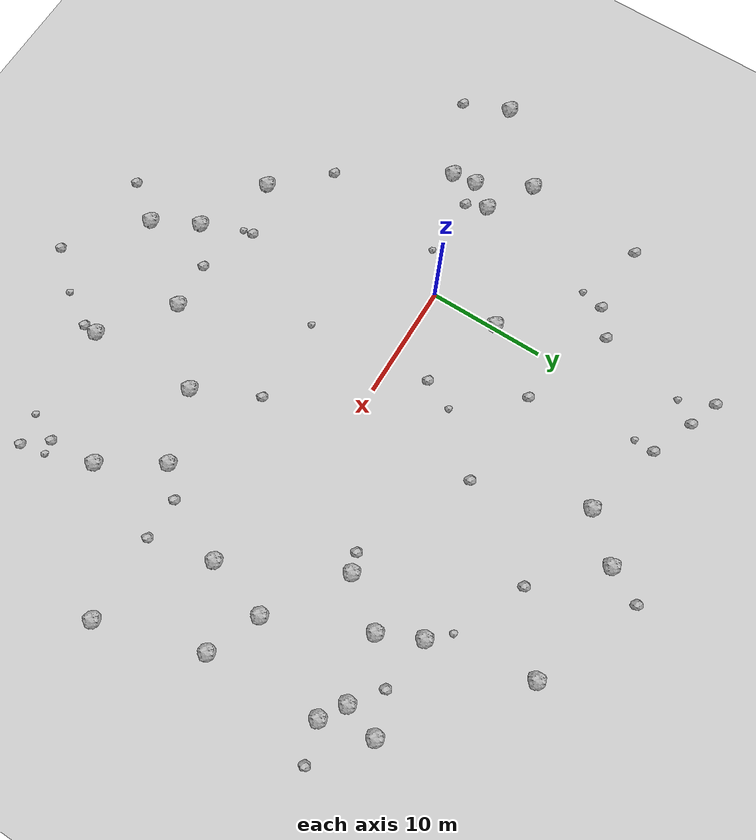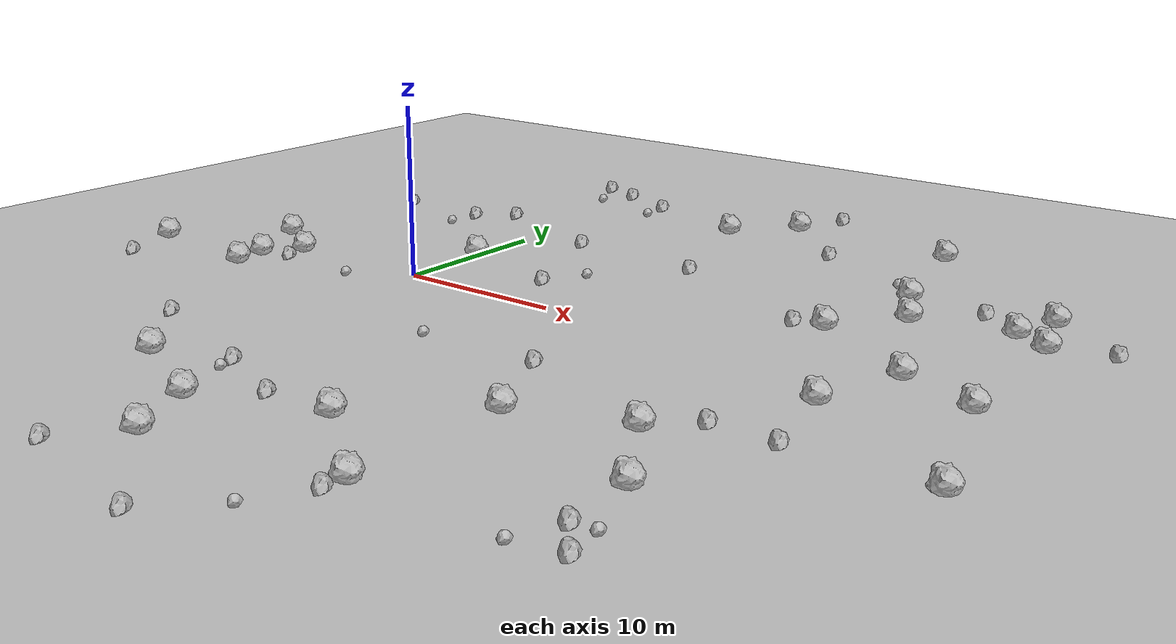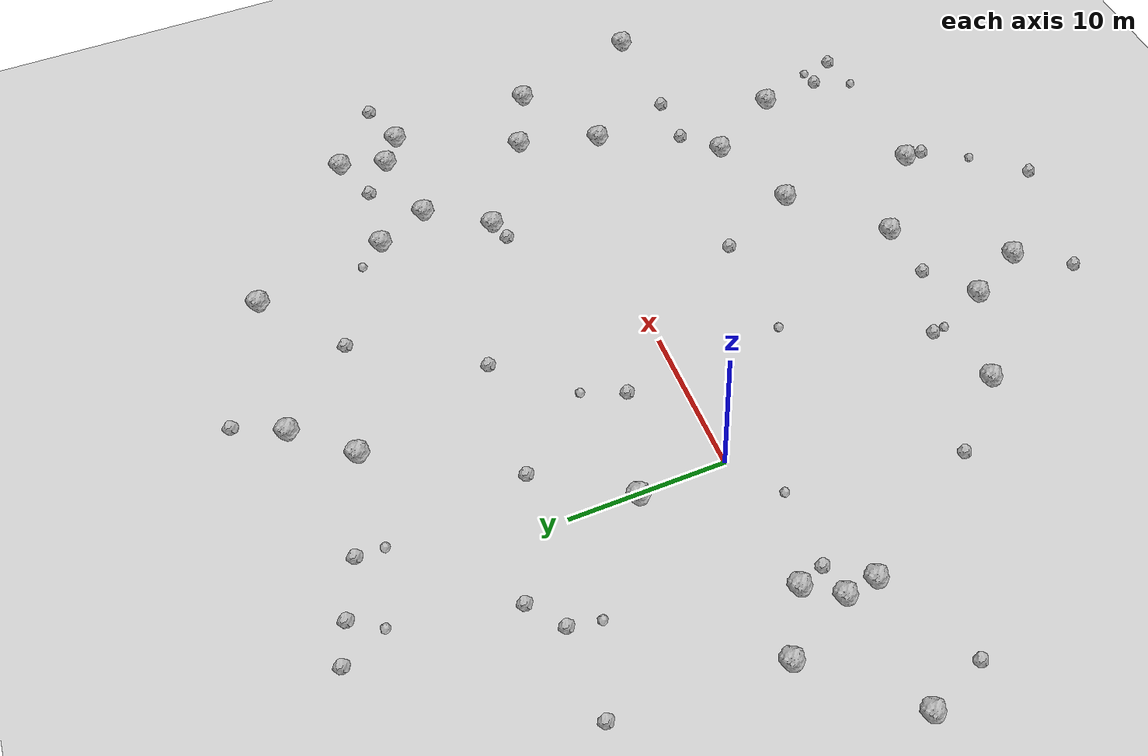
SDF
<sdf version="1.6">
 <world name="default">
  <include><uri>model://custom_ground</uri></include>
  <include><uri>model://sun</uri></include>
  <model name="rock1_0_0">
   <include><uri>model://rock1</uri><pose>23.96256814576043 -10.586147073642778 0.5 0 0 0</pose></include>
  </model>
  <model name="rock1_0_1">
   <include><uri>model://rock1</uri><pose>-0.1580409418926365 5.679114083501233 0.5 0 0 0</pose></include>
  </model>
  <model name="rock1_0_2">
   <include><uri>model://rock1</uri><pose>28.41739158182829 -3.074814084284803 0.5 0 0 0</pose></include>
  </model>
  <model name="rock1_0_3">
   <include><uri>model://rock1</uri><pose>17.941708850916385 -12.741150874366923 0.5 0 0 0</pose></include>
  </model>
  <model name="rock1_0_4">
   <include><uri>model://rock1</uri><pose>32.87942995188476 14.484928127473097 0.5 0 0 0</pose></include>
  </model>
  <model name="rock1_0_5">
   <include><uri>model://rock1</uri><pose>5.297471644125228 -20.443782554394325 0.5 0 0 0</pose></include>
  </model>
  <model name="rock1_0_6">
   <include><uri>model://rock1</uri><pose>33.98502137144183 10.156894638287625 0.5 0 0 0</pose></include>
  </model>
  <model name="rock1_0_7">
   <include><uri>model://rock1</uri><pose>-18.61232958123685 -3.422036454938084 0.5 0 0 0</pose></include>
  </model>
  <model name="rock1_0_8">
   <include><uri>model://rock1</uri><pose>-10.424005905759916 -4.464434464372967 0.5 0 0 0</pose></include>
  </model>
  <model name="rock1_0_9">
   <include><uri>model://rock1</uri><pose>18.0621693828733 -22.166217941436116 0.5 0 0 0</pose></include>
  </model>
  <model name="rock1_0_10">
   <include><uri>model://rock1</uri><pose>34.43435731147181 0.40605139688128133 0.5 0 0 0</pose></include>
  </model>
  <model name="rock1_0_11">
   <include><uri>model://rock1</uri><pose>-10.698162312541825 -2.3847659155270655 0.5 0 0 0</pose></include>
  </model>
  <model name="rock1_0_12">
   <include><uri>model://rock1</uri><pose>12.40423361291868 23.394985836606764 0.5 0 0 0</pose></include>
  </model>
  <model name="rock1_0_13">
   <include><uri>model://rock1</uri><pose>-13.059409607692023 2.1029047907385916 0.5 0 0 0</pose></include>
  </model>
  <model name="rock1_0_14">
   <include><uri>model://rock1</uri><pose>9.178014654658845 19.939708198522908 0.5 0 0 0</pose></include>
  </model>
  <model name="rock1_0_15">
   <include><uri>model://rock1</uri><pose>26.415786492979663 10.464565087323173 0.5 0 0 0</pose></include>
  </model>
  <model name="rock1_0_16">
   <include><uri>model://rock1</uri><pose>30.02413011107513 2.2766012231866384 0.5 0 0 0</pose></include>
  </model>
  <model name="rock1_0_17">
   <include><uri>model://rock1</uri><pose>37.08525120557077 -8.429192265944383 0.5 0 0 0</pose></include>
  </model>
  <model name="rock1_0_18">
   <include><uri>model://rock1</uri><pose>27.09199994535812 -15.657473308679657 0.5 0 0 0</pose></include>
  </model>
  <model name="rock1_0_19">
   <include><uri>model://rock1</uri><pose>-0.8922242826436957 -17.66719383208281 0.5 0 0 0</pose></include>
  </model>
  <model name="rock1_0_20">
   <include><uri>model://rock1</uri><pose>7.299470260438689 -24.273388104321164 0.5 0 0 0</pose></include>
  </model>
  <model name="rock1_0_21">
   <include><uri>model://rock1</uri><pose>22.945594447407736 22.639345842651814 0.5 0 0 0</pose></include>
  </model>
  <model name="rock1_0_22">
   <include><uri>model://rock1</uri><pose>31.944654300674436 11.467203417531962 0.5 0 0 0</pose></include>
  </model>
  <model name="rock1_0_23">
   <include><uri>model://rock1</uri><pose>12.36814415746121 -17.806907995512976 0.5 0 0 0</pose></include>
  </model>
  <model name="rock1_0_24">
   <include><uri>model://rock1</uri><pose>-9.18715183311863 -0.29991783965035523 0.5 0 0 0</pose></include>
  </model>
  <model name="rock1_0_25">
   <include><uri>model://rock1</uri><pose>23.529986395838343 6.515106325926851 0.5 0 0 0</pose></include>
  </model>
  <model name="rock1_0_26">
   <include><uri>model://rock1</uri><pose>24.815076601063687 13.910479630349023 0.5 0 0 0</pose></include>
  </model>
  <model name="rock2_0_0">
   <include><uri>model://rock2</uri><pose>3.578129130869094 -16.16692837668848 0.3 0 0 0</pose></include>
  </model>
  <model name="rock2_0_1">
   <include><uri>model://rock2</uri><pose>27.428267597585908 -19.759513121159923 0.3 0 0 0</pose></include>
  </model>
  <model name="rock2_0_2">
   <include><uri>model://rock2</uri><pose>29.48508474239822 13.352315158277285 0.3 0 0 0</pose></include>
  </model>
  <model name="rock2_0_3">
   <include><uri>model://rock2</uri><pose>-4.1746304810611505 14.165744127129244 0.3 0 0 0</pose></include>
  </model>
  <model name="rock2_0_4">
   <include><uri>model://rock2</uri><pose>17.295356006212558 18.435426283717 0.3 0 0 0</pose></include>
  </model>
  <model name="rock2_0_5">
   <include><uri>model://rock2</uri><pose>12.289626321882182 10.640985729403674 0.3 0 0 0</pose></include>
  </model>
  <model name="rock2_0_6">
   <include><uri>model://rock2</uri><pose>-1.2643293683313814 23.536320333111753 0.3 0 0 0</pose></include>
  </model>
  <model name="rock2_0_7">
   <include><uri>model://rock2</uri><pose>-5.078221449205184 -13.347228170310135 0.3 0 0 0</pose></include>
  </model>
  <model name="rock2_0_8">
   <include><uri>model://rock2</uri><pose>3.763340004281538 11.200142381877818 0.3 0 0 0</pose></include>
  </model>
  <model name="rock2_0_9">
   <include><uri>model://rock2</uri><pose>-8.593817911637815 -2.05421884149213 0.3 0 0 0</pose></include>
  </model>
  <model name="rock2_0_10">
   <include><uri>model://rock2</uri><pose>13.921627170675514 26.487560802090762 0.3 0 0 0</pose></include>
  </model>
  <model name="rock2_0_11">
   <include><uri>model://rock2</uri><pose>4.910181380320477 -27.513099349576567 0.3 0 0 0</pose></include>
  </model>
  <model name="rock2_0_12">
   <include><uri>model://rock2</uri><pose>-6.389204506813105 12.530137358847838 0.3 0 0 0</pose></include>
  </model>
  <model name="rock2_0_13">
   <include><uri>model://rock2</uri><pose>18.01014584404139 -23.428136131902576 0.3 0 0 0</pose></include>
  </model>
  <model name="rock2_0_14">
   <include><uri>model://rock2</uri><pose>13.415344528807758 -29.38692071259573 0.3 0 0 0</pose></include>
  </model>
  <model name="rock2_0_15">
   <include><uri>model://rock2</uri><pose>-17.083385159956002 -7.286180661696445 0.3 0 0 0</pose></include>
  </model>
  <model name="rock2_0_16">
   <include><uri>model://rock2</uri><pose>-3.8234732857485554 24.4843805416859 0.3 0 0 0</pose></include>
  </model>
  <model name="rock2_0_17">
   <include><uri>model://rock2</uri><pose>6.913424224778041 3.4733461319559353 0.3 0 0 0</pose></include>
  </model>
  <model name="rock2_0_18">
   <include><uri>model://rock2</uri><pose>15.320388897650517 -7.3203294347291035 0.3 0 0 0</pose></include>
  </model>
  <model name="rock2_0_19">
   <include><uri>model://rock2</uri><pose>8.322710209520412 -18.05026056274828 0.3 0 0 0</pose></include>
  </model>
  <model name="rock2_0_20">
   <include><uri>model://rock2</uri><pose>37.25245316368835 11.12103622756463 0.3 0 0 0</pose></include>
  </model>
  <model name="rock2_0_21">
   <include><uri>model://rock2</uri><pose>26.131500497765792 -8.496168912250937 0.3 0 0 0</pose></include>
  </model>
  <model name="rock2_0_22">
   <include><uri>model://rock2</uri><pose>29.711875925371494 -8.533448604929504 0.3 0 0 0</pose></include>
  </model>
  <model name="rock2_0_23">
   <include><uri>model://rock2</uri><pose>2.3940881802948297 22.00194077299433 0.3 0 0 0</pose></include>
  </model>
  <model name="rock2_0_24">
   <include><uri>model://rock2</uri><pose>28.993065558352363 -21.703560069414035 0.3 0 0 0</pose></include>
  </model>
  <model name="rock2_0_25">
   <include><uri>model://rock2</uri><pose>21.95720262483981 6.004307388810972 0.3 0 0 0</pose></include>
  </model>
  <model name="rock2_0_26">
   <include><uri>model://rock2</uri><pose>-12.316274381224401 12.570213672096536 0.3 0 0 0</pose></include>
  </model>
  <model name="rock3_0_0">
   <include><uri>model://rock3</uri><pose>2.3327825160831033 20.226452054251695 0.2 0 0 0</pose></include>
  </model>
  <model name="rock3_0_1">
   <include><uri>model://rock3</uri><pose>7.872306202601582 -7.392357705741624 0.2 0 0 0</pose></include>
  </model>
  <model name="rock3_0_2">
   <include><uri>model://rock3</uri><pose>26.331481828916978 -22.23897731761933 0.2 0 0 0</pose></include>
  </model>
  <model name="rock3_0_3">
   <include><uri>model://rock3</uri><pose>23.244884643001754 15.580587756518483 0.2 0 0 0</pose></include>
  </model>
  <model name="rock3_0_4">
   <include><uri>model://rock3</uri><pose>-6.797412899877411 10.527264413228892 0.2 0 0 0</pose></include>
  </model>
  <model name="rock3_0_5">
   <include><uri>model://rock3</uri><pose>16.266468183047003 -26.351691855839945 0.2 0 0 0</pose></include>
  </model>
  <model name="rock3_0_6">
   <include><uri>model://rock3</uri><pose>3.712939133427451 -17.0886505815148 0.2 0 0 0</pose></include>
  </model>
  <model name="rock3_0_7">
   <include><uri>model://rock3</uri><pose>28.585731086721168 -19.599166140235702 0.2 0 0 0</pose></include>
  </model>
  <model name="rock3_0_8">
   <include><uri>model://rock3</uri><pose>8.07194706538263 6.1094760336943 0.2 0 0 0</pose></include>
  </model>
  <model name="rock3_0_9">
   <include><uri>model://rock3</uri><pose>-3.361673642422417 -2.306266194044685 0.2 0 0 0</pose></include>
  </model>
  <model name="rock3_0_10">
   <include><uri>model://rock3</uri><pose>-2.559120370933176 21.65289137292794 0.2 0 0 0</pose></include>
  </model>
 </world>
</sdf>
